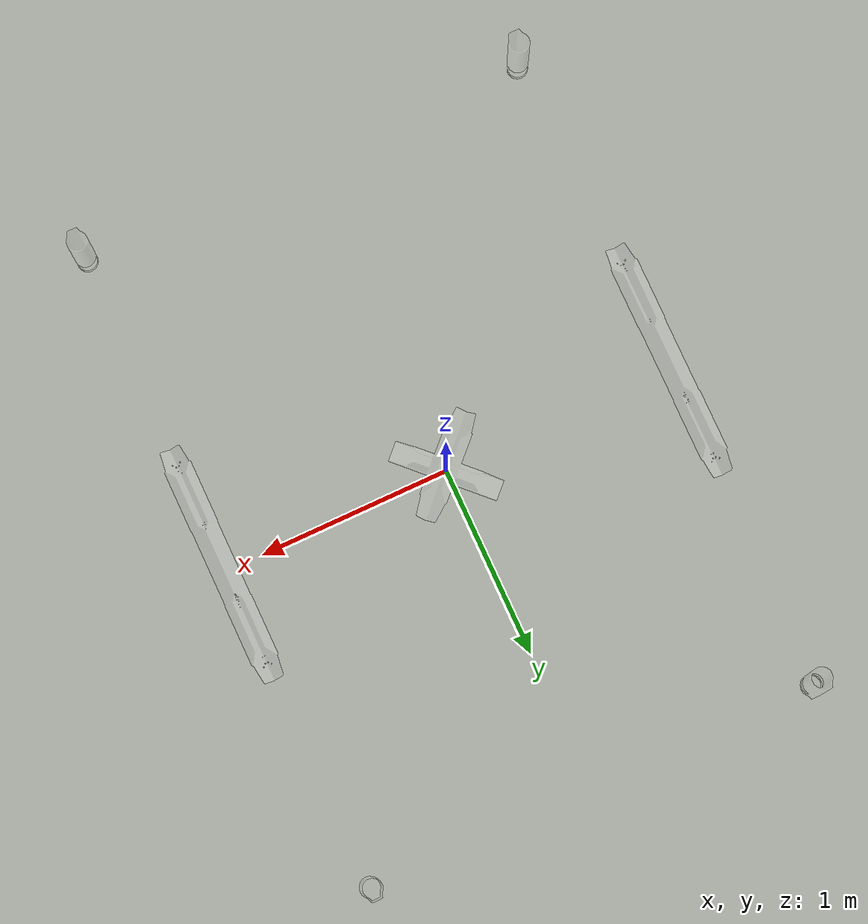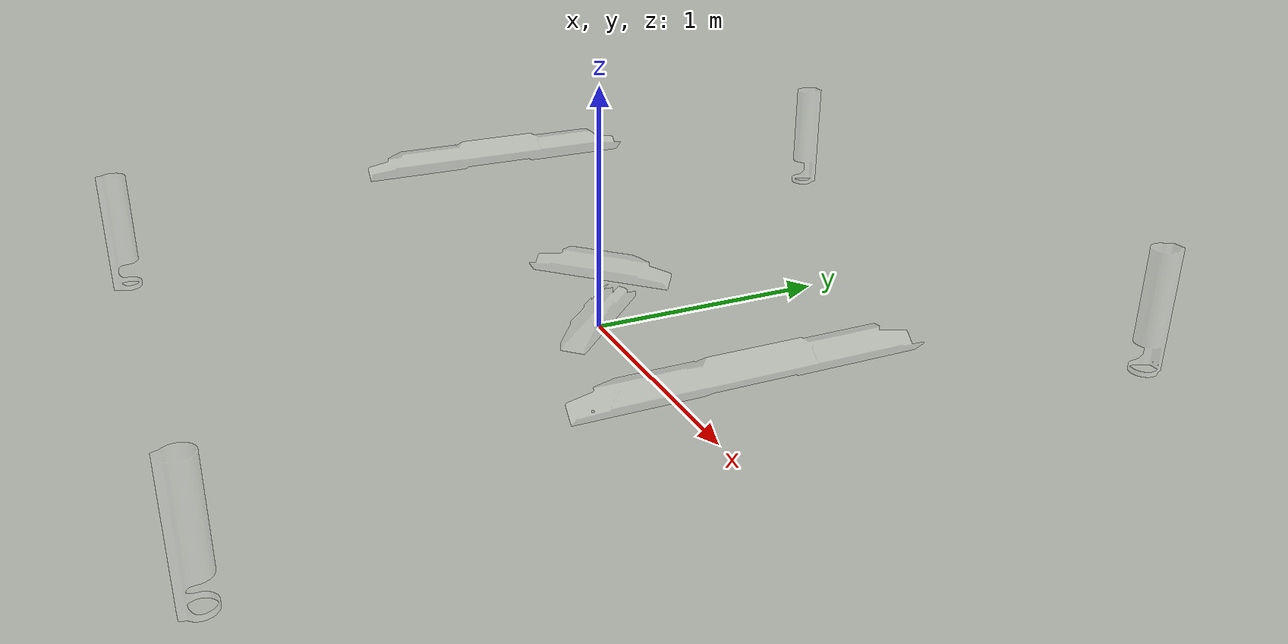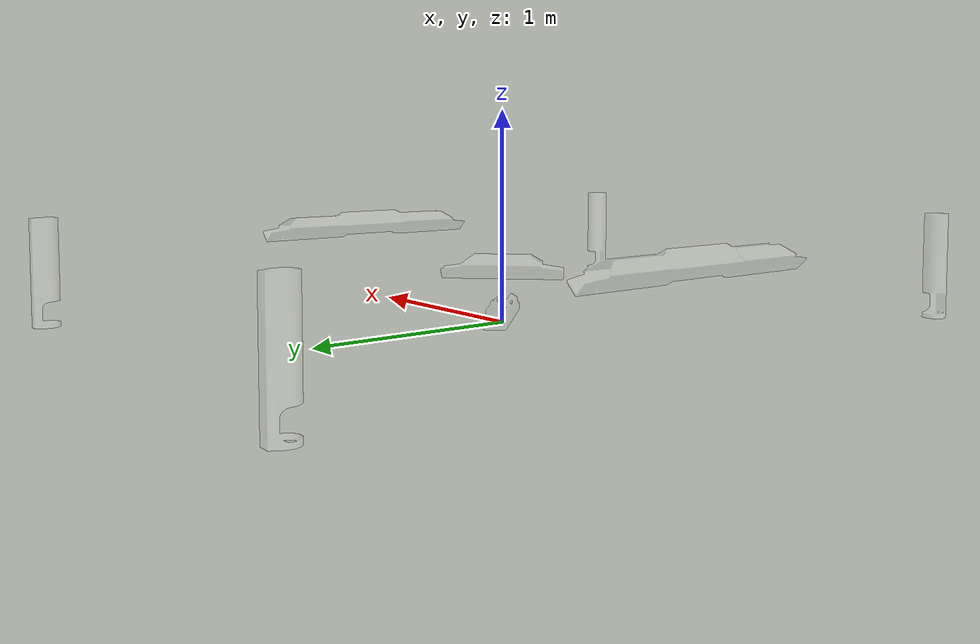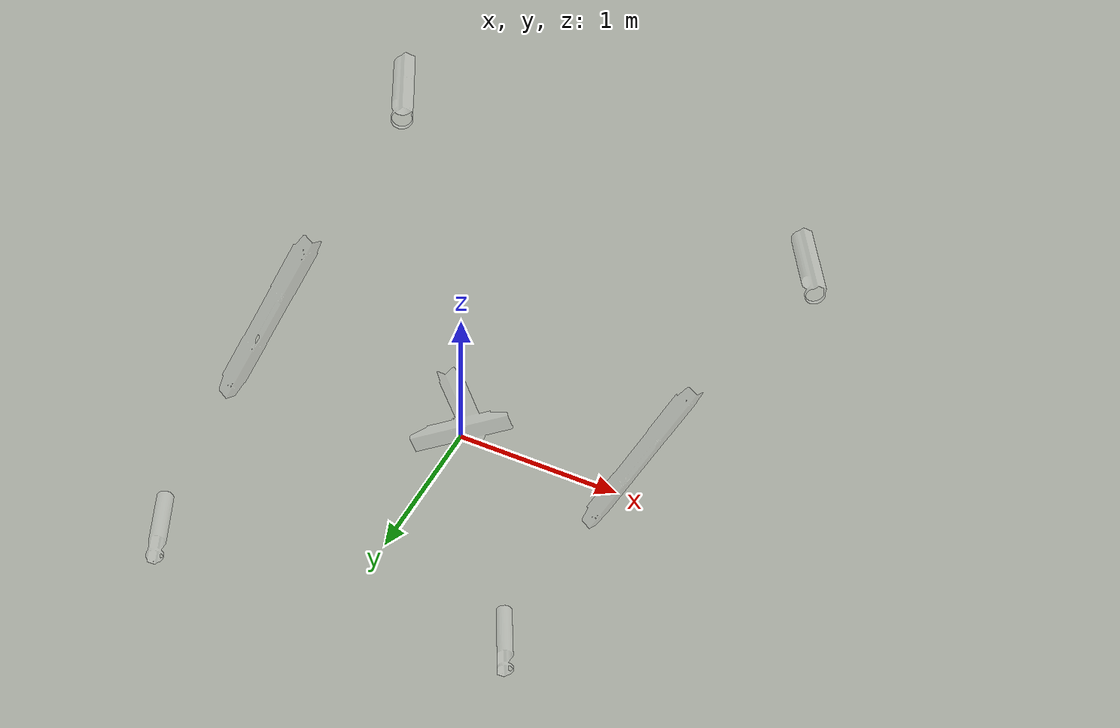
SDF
<?xml version="1.0" ?>
<sdf version="1.7">
  <model name="clear-objects">

    <!-- model position in the world -->
    <pose>0 0 0.01 0 0 0</pose>

    <!-- locked postiton? -->
    <static>true</static>

    <link name="link">
      <!--pose of link relative to model-->
      <pose>0 0 0 0 0 0</pose>

      <!-- visual model-->
      <visual name="visual">
        <geometry>
          <mesh>
            <uri>model://clear-objects/meshes/vex-clear-obj.dae</uri>
          </mesh>
        </geometry>
        <!-- Very pale grey, mostly transparent -->
         <material>
          <ambient>0.95 0.95 0.95 0.15</ambient>
          <diffuse>0.95 0.95 0.95 0.15</diffuse>
          <specular>0.8 0.8 0.8 0.3</specular>
        </material>
      </visual>

      <!-- collision geometry-->
      <collision name="collision">
        <geometry>
          <mesh>
            <uri>model://clear-objects/meshes/vex-clear-obj.dae</uri>
          </mesh>
        </geometry>
      </collision>

      <inertial>
        <mass>1</mass>
        <inertia>
          <ixx>0.0002</ixx>
          <iyy>0.0002</iyy>
          <izz>0.0002</izz>
        </inertia>
      </inertial>

    </link>
  </model>
</sdf>
